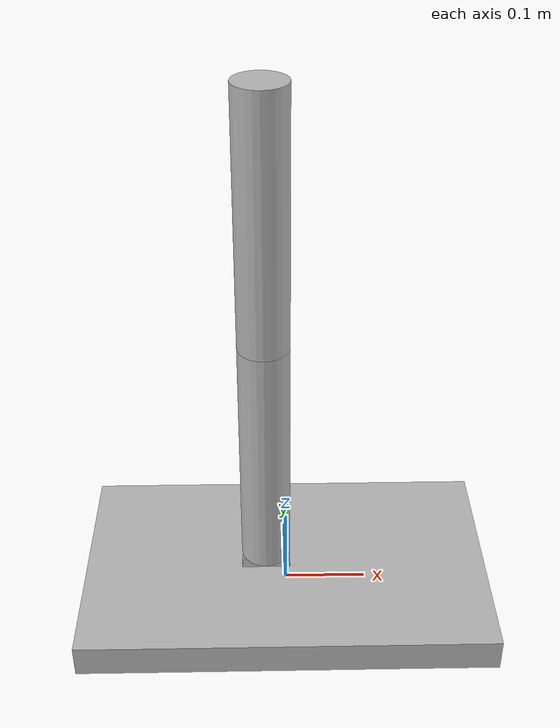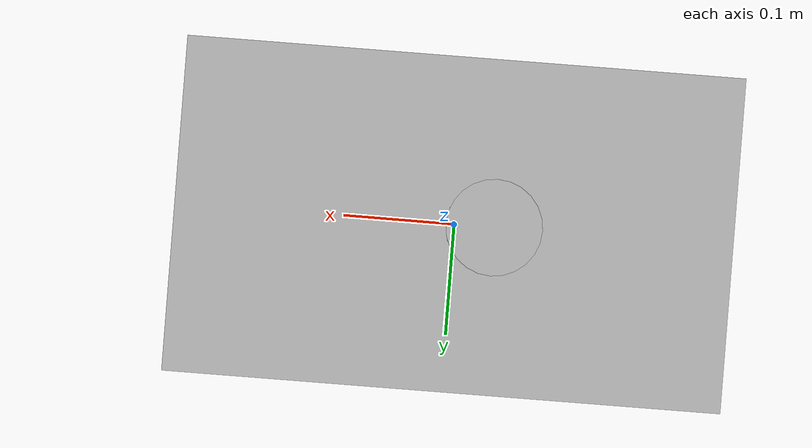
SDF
<sdf version='1.5'>
  <model name='stickbot_lowerleg_3dof'>
    <link name='foot'>
      <pose frame=''>0 0 0 0 -0 0</pose>
      <inertial>
        <pose frame=''>0 0 0 0 -0 0</pose>
        <mass>10</mass>
        <inertia>
          <ixx>0.008667</ixx>
          <ixy>0</ixy>
          <ixz>0</ixz>
          <iyy>0.008667</iyy>
          <iyz>0</iyz>
          <izz>0.01667</izz>
        </inertia>
      </inertial>
      <collision name='foot_collision'>
        <pose frame=''>0 0 0.02 0 -0 0</pose>
        <geometry>
          <box>
            <size>0.5 0.3 0.04</size>
          </box>
        </geometry>
      </collision>
      <visual name='foot_visual'>
        <pose frame=''>0 0 0.01 0 -0 0</pose>
        <geometry>
          <box>
            <size>0.5 0.3 0.04</size>
          </box>
        </geometry>
      </visual>
    </link>
    <link name='ankleLink'>
      <pose frame=''>-0.025 0 0.015 0 -0 0</pose>
      <inertial>
        <pose frame=''>0 0 0.015 0 -0 0</pose>
        <mass>0.25</mass>
        <inertia>
          <ixx>0.00015</ixx>
          <ixy>0</ixy>
          <ixz>0</ixz>
          <iyy>0.00015</iyy>
          <iyz>0</iyz>
          <izz>0.000225</izz>
        </inertia>
      </inertial>
      <collision name='ankleLink_collision'>
        <pose frame=''>0 0 0.015 1.507 -0 0</pose>
        <geometry>
          <cylinder>
            <length>0.03</length>
            <radius>0.03</radius>
          </cylinder>
        </geometry>
      </collision>
      <visual name='ankleLink_visual'>
        <pose frame=''>0 0 0.015 1.507 -0 0</pose>
        <geometry>
          <cylinder>
            <length>0.03</length>
            <radius>0.03</radius>
          </cylinder>
        </geometry>
      </visual>
    </link>
    <joint name='ankleRoll' type='revolute'>
      <child>ankleLink</child>
      <parent>foot</parent>
      <axis>
        <xyz>1 0 0</xyz>
        <limit>
          <lower>-1e+16</lower>
          <upper>1e+16</upper>
        </limit>
        <dynamics>
          <damping>0</damping>
          <friction>0</friction>
          <spring_reference>0</spring_reference>
          <spring_stiffness>0</spring_stiffness>
        </dynamics>
        <use_parent_model_frame>1</use_parent_model_frame>
      </axis>
      <physics>
        <provide_feedback>1</provide_feedback>
        <ode>
          <provide_feedback>1</provide_feedback>
          <limit>
            <cfm>0</cfm>
            <erp>0.2</erp>
          </limit>
        </ode>
      </physics>
    </joint>
    <link name='lowerLeg'>
      <pose frame=''>-0.025 0 0.045 0 -0 0</pose>
      <inertial>
        <pose frame=''>-0 0 0.15 0 -0 0</pose>
        <mass>2</mass>
        <inertia>
          <ixx>0.01545</ixx>
          <ixy>0</ixy>
          <ixz>0</ixz>
          <iyy>0.01545</iyy>
          <iyz>0</iyz>
          <izz>0.0009</izz>
        </inertia>
      </inertial>
      <collision name='lowerLeg_collision'>
        <pose frame=''>0 0 0.15 0 -0 0</pose>
        <geometry>
          <cylinder>
            <length>0.3</length>
            <radius>0.03</radius>
          </cylinder>
        </geometry>
      </collision>
      <visual name='lowerLeg_visual'>
        <pose frame=''>0 0 0.15 0 -0 0</pose>
        <geometry>
          <cylinder>
            <length>0.3</length>
            <radius>0.03</radius>
          </cylinder>
        </geometry>
      </visual>
    </link>
    <joint name='anklePitch' type='revolute'>
      <child>lowerLeg</child>
      <parent>ankleLink</parent>
      <axis>
        <xyz>0 1 0</xyz>
        <limit>
          <lower>-1e+16</lower>
          <upper>1e+16</upper>
        </limit>
        <dynamics>
          <spring_reference>0</spring_reference>
          <spring_stiffness>0</spring_stiffness>
        </dynamics>
        <use_parent_model_frame>1</use_parent_model_frame>
      </axis>
      <physics>
        <provide_feedback>1</provide_feedback>
        <ode>
          <provide_feedback>1</provide_feedback>
          <limit>
            <cfm>0</cfm>
            <erp>0.2</erp>
          </limit>
        </ode>
      </physics>
    </joint>
    <link name='upperleg'>
      <pose frame=''>-0.025 0 0.345 0 -0 0</pose>
      <inertial>
        <pose frame=''>-0 0 0.15 0 -0 0</pose>
        <mass>2</mass>
        <inertia>
          <ixx>0.01545</ixx>
          <ixy>0</ixy>
          <ixz>0</ixz>
          <iyy>0.01545</iyy>
          <iyz>0</iyz>
          <izz>0.0009</izz>
        </inertia>
      </inertial>
      <collision name='upperleg_collision'>
        <pose frame=''>0 0 0.3 0 -0 0</pose>
        <geometry>
          <cylinder>
            <length>0.3</length>
            <radius>0.03</radius>
          </cylinder>
        </geometry>
      </collision>
      <visual name='upperleg_visual'>
        <pose frame=''>0 0 0.15 0 -0 0</pose>
        <geometry>
          <cylinder>
            <length>0.3</length>
            <radius>0.03</radius>
          </cylinder>
        </geometry>
      </visual>
    </link>
    <joint name='knee' type='revolute'>
      <child>upperleg</child>
      <parent>lowerLeg</parent>
      <axis>
        <xyz>0 1 0</xyz>
        <limit>
          <lower>-1e+16</lower>
          <upper>1e+16</upper>
        </limit>
        <dynamics>
          <spring_reference>0</spring_reference>
          <spring_stiffness>0</spring_stiffness>
        </dynamics>
        <use_parent_model_frame>1</use_parent_model_frame>
      </axis>
      <physics>
        <provide_feedback>1</provide_feedback>
        <ode>
          <provide_feedback>1</provide_feedback>
          <limit>
            <cfm>0</cfm>
            <erp>0.2</erp>
          </limit>
        </ode>
      </physics>
    </joint>
  </model>
</sdf>
